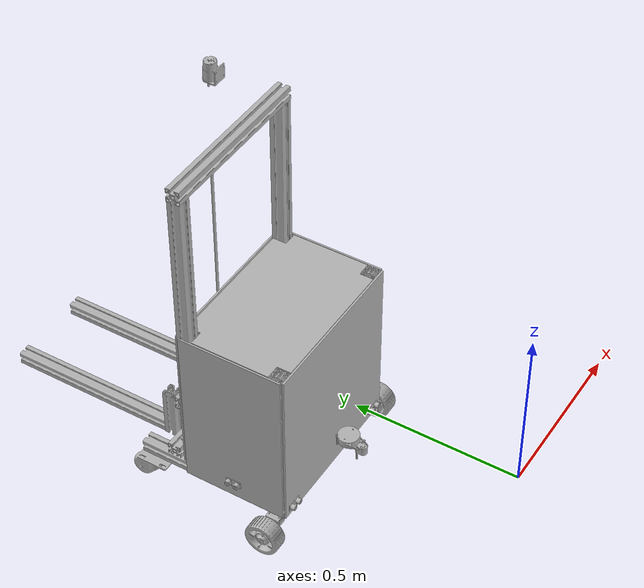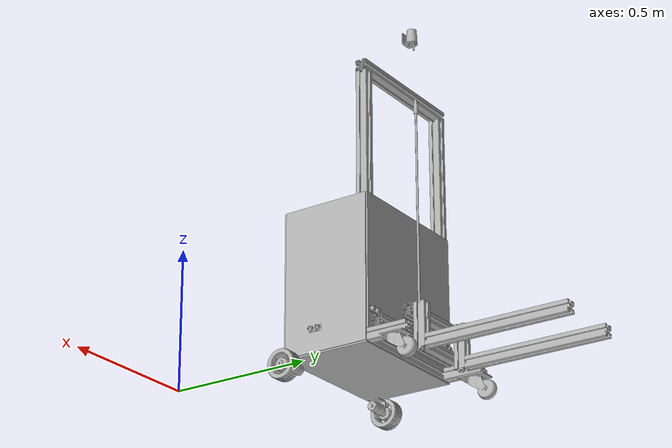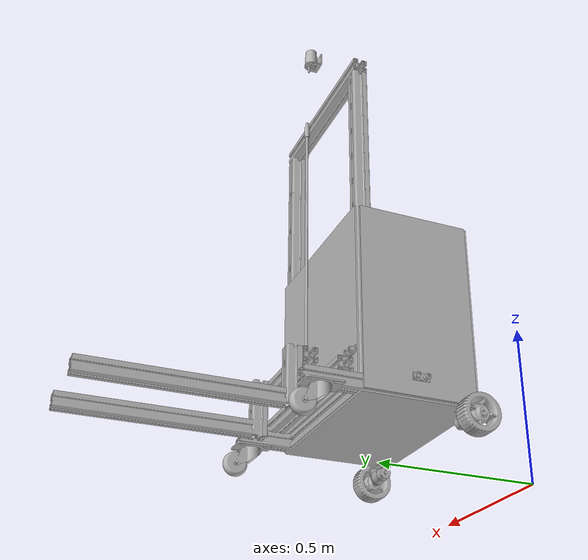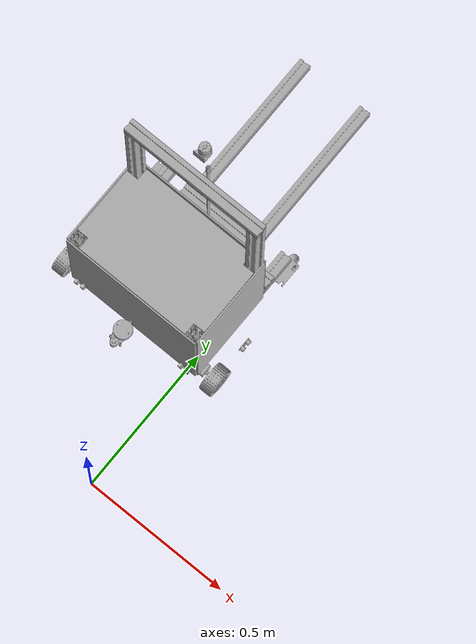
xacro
<?xml version="1.0" ?>
<robot name="fork_redesigned" xmlns:xacro="http://www.ros.org/wiki/xacro">

<material name="silver">
  <color rgba="0.700 0.700 0.700 1.000"/>
</material>

<link name="base_link">
  <inertial>
    <origin xyz="-0.20798536917927715 0.6074770385144476 0.0025" rpy="0 0 0"/>
    <mass value="6.943770210382302"/>
    <inertia ixx="0.053873" iyy="0.194565" izz="0.248409" ixy="-1.9e-05" iyz="0.0" ixz="0.0"/>
  </inertial>
  <visual>
    <origin xyz="0 0 0" rpy="0 0 0"/>
    <geometry>
      <mesh filename="file://$(find mybot_description)/meshes/base_link.stl" scale="0.001 0.001 0.001"/>
    </geometry>
    <material name="silver"/>
  </visual>
  <collision>
    <origin xyz="0 0 0" rpy="0 0 0"/>
    <geometry>
      <mesh filename="file://$(find mybot_description)/meshes/base_link.stl" scale="0.001 0.001 0.001"/>
    </geometry>
  </collision>
</link>

<link name="left_motor_link_1">
  <inertial>
    <origin xyz="-0.025746420161885983 -5.5906449600851005e-06 0.006676741521228598" rpy="0 0 0"/>
    <mass value="0.12785022222079845"/>
    <inertia ixx="2.3e-05" iyy="5.6e-05" izz="5.6e-05" ixy="-0.0" iyz="0.0" ixz="2e-06"/>
  </inertial>
  <visual>
    <origin xyz="-0.097079 -0.484372 0.034" rpy="0 0 0"/>
    <geometry>
      <mesh filename="file://$(find mybot_description)/meshes/left_motor_link_1.stl" scale="0.001 0.001 0.001"/>
    </geometry>
    <material name="silver"/>
  </visual>
  <collision>
    <origin xyz="-0.097079 -0.484372 0.034" rpy="0 0 0"/>
    <geometry>
      <mesh filename="file://$(find mybot_description)/meshes/left_motor_link_1.stl" scale="0.001 0.001 0.001"/>
    </geometry>
  </collision>
</link>

<link name="right_motor_link_1">
  <inertial>
    <origin xyz="0.025746420161885775 3.9798783471045596e-06 0.006673230990990191" rpy="0 0 0"/>
    <mass value="0.12785022222079845"/>
    <inertia ixx="2.3e-05" iyy="5.6e-05" izz="5.6e-05" ixy="-0.0" iyz="-0.0" ixz="-2e-06"/>
  </inertial>
  <visual>
    <origin xyz="0.512989 -0.484372 0.034" rpy="0 0 0"/>
    <geometry>
      <mesh filename="file://$(find mybot_description)/meshes/right_motor_link_1.stl" scale="0.001 0.001 0.001"/>
    </geometry>
    <material name="silver"/>
  </visual>
  <collision>
    <origin xyz="0.512989 -0.484372 0.034" rpy="0 0 0"/>
    <geometry>
      <mesh filename="file://$(find mybot_description)/meshes/right_motor_link_1.stl" scale="0.001 0.001 0.001"/>
    </geometry>
  </collision>
</link>

<link name="left_wheel_link_1">
  <inertial>
    <origin xyz="2.589702400856986e-07 -2.0531276034851942e-07 3.703704010149522e-13" rpy="0 0 0"/>
    <mass value="1.9401899677229664"/>
    <inertia ixx="0.002715" iyy="0.001642" izz="0.001642" ixy="0.0" iyz="-0.0" ixz="0.0"/>
  </inertial>
  <visual>
    <origin xyz="-0.130827 -0.484372 0.034" rpy="0 0 0"/>
    <geometry>
      <mesh filename="file://$(find mybot_description)/meshes/left_wheel_link_1.stl" scale="0.001 0.001 0.001"/>
    </geometry>
    <material name="silver"/>
  </visual>
  <collision>
    <origin xyz="-0.130827 -0.484372 0.034" rpy="0 0 0"/>
    <geometry>
      <mesh filename="file://$(find mybot_description)/meshes/left_wheel_link_1.stl" scale="0.001 0.001 0.001"/>
    </geometry>
  </collision>
</link>

<link name="right_wheel_link_1">
  <inertial>
    <origin xyz="5.004531045127436e-08 -2.0517171461786887e-07 2.9867081030587883e-13" rpy="0 0 0"/>
    <mass value="1.9401899677229664"/>
    <inertia ixx="0.002715" iyy="0.001642" izz="0.001642" ixy="0.0" iyz="-0.0" ixz="0.0"/>
  </inertial>
  <visual>
    <origin xyz="0.54774 -0.484372 0.034" rpy="0 0 0"/>
    <geometry>
      <mesh filename="file://$(find mybot_description)/meshes/right_wheel_link_1.stl" scale="0.001 0.001 0.001"/>
    </geometry>
    <material name="silver"/>
  </visual>
  <collision>
    <origin xyz="0.54774 -0.484372 0.034" rpy="0 0 0"/>
    <geometry>
      <mesh filename="file://$(find mybot_description)/meshes/right_wheel_link_1.stl" scale="0.001 0.001 0.001"/>
    </geometry>
  </collision>
</link>

<link name="fork_rear_slot_right_link_1">
  <inertial>
    <origin xyz="0.020000308159449587 0.016999794757661002 -0.5499999999999772" rpy="0 0 0"/>
    <mass value="1.6079227622387897"/>
    <inertia ixx="0.16237" iyy="0.16237" izz="0.000475" ixy="-0.0" iyz="-0.0" ixz="-0.0"/>
  </inertial>
  <visual>
    <origin xyz="0.497455 -0.725081 -1.145" rpy="0 0 0"/>
    <geometry>
      <mesh filename="file://$(find mybot_description)/meshes/fork_rear_slot_right_link_1.stl" scale="0.001 0.001 0.001"/>
    </geometry>
    <material name="silver"/>
  </visual>
  <collision>
    <origin xyz="0.497455 -0.725081 -1.145" rpy="0 0 0"/>
    <geometry>
      <mesh filename="file://$(find mybot_description)/meshes/fork_rear_slot_right_link_1.stl" scale="0.001 0.001 0.001"/>
    </geometry>
  </collision>
</link>

<link name="lead_motor_link_1">
  <inertial>
    <origin xyz="-5.571494613665351e-06 -0.006675563568607545 0.025746024624354158" rpy="0 0 0"/>
    <mass value="0.12785022222079845"/>
    <inertia ixx="5.6e-05" iyy="5.6e-05" izz="2.3e-05" ixy="-0.0" iyz="2e-06" ixz="-0.0"/>
  </inertial>
  <visual>
    <origin xyz="0.209955 -0.796081 -1.1343" rpy="0 0 0"/>
    <geometry>
      <mesh filename="file://$(find mybot_description)/meshes/lead_motor_link_1.stl" scale="0.001 0.001 0.001"/>
    </geometry>
    <material name="silver"/>
  </visual>
  <collision>
    <origin xyz="0.209955 -0.796081 -1.1343" rpy="0 0 0"/>
    <geometry>
      <mesh filename="file://$(find mybot_description)/meshes/lead_motor_link_1.stl" scale="0.001 0.001 0.001"/>
    </geometry>
  </collision>
</link>

<link name="coupling_link_1">
  <inertial>
    <origin xyz="-0.7798636919107719 0.7960807588890809 1.1183430344970238" rpy="0 0 0"/>
    <mass value="0.03211224123272413"/>
    <inertia ixx="5e-06" iyy="5e-06" izz="1e-06" ixy="-0.0" iyz="-0.0" ixz="-0.0"/>
  </inertial>
  <visual>
    <origin xyz="-0.569909 0.0 0.0215" rpy="0 0 0"/>
    <geometry>
      <mesh filename="file://$(find mybot_description)/meshes/coupling_link_1.stl" scale="0.001 0.001 0.001"/>
    </geometry>
    <material name="silver"/>
  </visual>
  <collision>
    <origin xyz="-0.569909 0.0 0.0215" rpy="0 0 0"/>
    <geometry>
      <mesh filename="file://$(find mybot_description)/meshes/coupling_link_1.stl" scale="0.001 0.001 0.001"/>
    </geometry>
  </collision>
</link>

<link name="lead_screw_link_1">
  <inertial>
    <origin xyz="0.209955 -0.796081 -1.09405" rpy="0 0 0"/>
    <mass value="0.0"/>
    <inertia ixx="0.0" iyy="0.0" izz="0.0" ixy="0.0" iyz="0.0" ixz="0.0"/>
  </inertial>
  <visual>
    <origin xyz="0.209955 -0.796081 -1.09405" rpy="0 0 0"/>
    <geometry>
      <mesh filename="file://$(find mybot_description)/meshes/lead_screw_link_1.stl" scale="0.001 0.001 0.001"/>
    </geometry>
    <material name="silver"/>
  </visual>
  <collision>
    <origin xyz="0.209955 -0.796081 -1.09405" rpy="0 0 0"/>
    <geometry>
      <mesh filename="file://$(find mybot_description)/meshes/lead_screw_link_1.stl" scale="0.001 0.001 0.001"/>
    </geometry>
  </collision>
</link>

<link name="fork_coupling_link_1">
  <inertial>
    <origin xyz="3.704621314715162e-07 -1.82611086141371e-07 -0.003490428234806414" rpy="0 0 0"/>
    <mass value="0.012051917875242903"/>
    <inertia ixx="0.0" iyy="0.0" izz="1e-06" ixy="0.0" iyz="0.0" ixz="0.0"/>
  </inertial>
  <visual>
    <origin xyz="0.209955 -0.796081 -0.17155" rpy="0 0 0"/>
    <geometry>
      <mesh filename="file://$(find mybot_description)/meshes/fork_coupling_link_1.stl" scale="0.001 0.001 0.001"/>
    </geometry>
    <material name="silver"/>
  </visual>
  <collision>
    <origin xyz="0.209955 -0.796081 -0.17155" rpy="0 0 0"/>
    <geometry>
      <mesh filename="file://$(find mybot_description)/meshes/fork_coupling_link_1.stl" scale="0.001 0.001 0.001"/>
    </geometry>
  </collision>
</link>

<link name="fork_holder_link_1">
  <inertial>
    <origin xyz="0.05995430808910074 -0.6339925062179093 -2.015338479526815" rpy="0 0 0"/>
    <mass value="0.06369340089197861"/>
    <inertia ixx="1.3e-05" iyy="1e-05" izz="1.3e-05" ixy="0.0" iyz="4e-06" ixz="-0.0"/>
  </inertial>
  <visual>
    <origin xyz="0.269909 -1.442162 -2.1831" rpy="0 0 0"/>
    <geometry>
      <mesh filename="file://$(find mybot_description)/meshes/fork_holder_link_1.stl" scale="0.001 0.001 0.001"/>
    </geometry>
    <material name="silver"/>
  </visual>
  <collision>
    <origin xyz="0.269909 -1.442162 -2.1831" rpy="0 0 0"/>
    <geometry>
      <mesh filename="file://$(find mybot_description)/meshes/fork_holder_link_1.stl" scale="0.001 0.001 0.001"/>
    </geometry>
  </collision>
</link>

<link name="fork_center_slot_1">
  <inertial>
    <origin xyz="3.080890577378259e-07 0.02000049498194556 -0.01140000000014843" rpy="0 0 0"/>
    <mass value="0.3946719507313423"/>
    <inertia ixx="0.000117" iyy="0.002456" izz="0.002456" ixy="0.0" iyz="-0.0" ixz="0.0"/>
  </inertial>
  <visual>
    <origin xyz="0.209955 -0.819621 -0.16005" rpy="0 0 0"/>
    <geometry>
      <mesh filename="file://$(find mybot_description)/meshes/fork_center_slot_1.stl" scale="0.001 0.001 0.001"/>
    </geometry>
    <material name="silver"/>
  </visual>
  <collision>
    <origin xyz="0.209955 -0.819621 -0.16005" rpy="0 0 0"/>
    <geometry>
      <mesh filename="file://$(find mybot_description)/meshes/fork_center_slot_1.stl" scale="0.001 0.001 0.001"/>
    </geometry>
  </collision>
</link>

<link name="fork_left_link_1">
  <inertial>
    <origin xyz="-0.01699969191092429 0.25000049498193877 0.020000000000006565" rpy="0 0 0"/>
    <mass value="0.7308739828358146"/>
    <inertia ixx="0.015334" iyy="0.000216" izz="0.015334" ixy="-0.0" iyz="0.0" ixz="0.0"/>
  </inertial>
  <visual>
    <origin xyz="0.074955 -0.899621 -0.01565" rpy="0 0 0"/>
    <geometry>
      <mesh filename="file://$(find mybot_description)/meshes/fork_left_link_1.stl" scale="0.001 0.001 0.001"/>
    </geometry>
    <material name="silver"/>
  </visual>
  <collision>
    <origin xyz="0.074955 -0.899621 -0.01565" rpy="0 0 0"/>
    <geometry>
      <mesh filename="file://$(find mybot_description)/meshes/fork_left_link_1.stl" scale="0.001 0.001 0.001"/>
    </geometry>
  </collision>
</link>

<link name="fork_right_link_1">
  <inertial>
    <origin xyz="0.02000030808907538 0.250000494981947 0.017000000000006104" rpy="0 0 0"/>
    <mass value="0.730873982835814"/>
    <inertia ixx="0.015334" iyy="0.000216" izz="0.015334" ixy="-0.0" iyz="-0.0" ixz="0.0"/>
  </inertial>
  <visual>
    <origin xyz="0.344955 -0.899621 -0.01565" rpy="0 0 0"/>
    <geometry>
      <mesh filename="file://$(find mybot_description)/meshes/fork_right_link_1.stl" scale="0.001 0.001 0.001"/>
    </geometry>
    <material name="silver"/>
  </visual>
  <collision>
    <origin xyz="0.344955 -0.899621 -0.01565" rpy="0 0 0"/>
    <geometry>
      <mesh filename="file://$(find mybot_description)/meshes/fork_right_link_1.stl" scale="0.001 0.001 0.001"/>
    </geometry>
  </collision>
</link>

<link name="left_caster_link_1">
  <inertial>
    <origin xyz="0.03250031161157105 -0.01040190184053058 -0.03942068950413622" rpy="0 0 0"/>
    <mass value="0.12271576702932177"/>
    <inertia ixx="0.000159" iyy="9.1e-05" izz="0.000101" ixy="0.0" iyz="4.8e-05" ixz="-0.0"/>
  </inertial>
  <visual>
    <origin xyz="-0.045045 -0.901881 -0.005" rpy="0 0 0"/>
    <geometry>
      <mesh filename="file://$(find mybot_description)/meshes/left_caster_link_1.stl" scale="0.001 0.001 0.001"/>
    </geometry>
    <material name="silver"/>
  </visual>
  <collision>
    <origin xyz="-0.045045 -0.901881 -0.005" rpy="0 0 0"/>
    <geometry>
      <mesh filename="file://$(find mybot_description)/meshes/left_caster_link_1.stl" scale="0.001 0.001 0.001"/>
    </geometry>
  </collision>
</link>

<link name="right_caster_link_1">
  <inertial>
    <origin xyz="-0.032499688388431314 -0.010401901840532024 -0.03942068950412401" rpy="0 0 0"/>
    <mass value="0.12271576702932177"/>
    <inertia ixx="0.000159" iyy="9.1e-05" izz="0.000101" ixy="0.0" iyz="4.8e-05" ixz="-0.0"/>
  </inertial>
  <visual>
    <origin xyz="0.460955 -0.901881 -0.005" rpy="0 0 0"/>
    <geometry>
      <mesh filename="file://$(find mybot_description)/meshes/right_caster_link_1.stl" scale="0.001 0.001 0.001"/>
    </geometry>
    <material name="silver"/>
  </visual>
  <collision>
    <origin xyz="0.460955 -0.901881 -0.005" rpy="0 0 0"/>
    <geometry>
      <mesh filename="file://$(find mybot_description)/meshes/right_caster_link_1.stl" scale="0.001 0.001 0.001"/>
    </geometry>
  </collision>
</link>

<link name="fork_left_h_slot_1">
  <inertial>
    <origin xyz="-0.01699969191109199 0.02000049498194334 -0.07499999999999676" rpy="0 0 0"/>
    <mass value="0.21926219485074544"/>
    <inertia ixx="0.000444" iyy="0.000444" izz="6.5e-05" ixy="0.0" iyz="-0.0" ixz="0.0"/>
  </inertial>
  <visual>
    <origin xyz="0.074955 -0.859621 -0.16565" rpy="0 0 0"/>
    <geometry>
      <mesh filename="file://$(find mybot_description)/meshes/fork_left_h_slot_1.stl" scale="0.001 0.001 0.001"/>
    </geometry>
    <material name="silver"/>
  </visual>
  <collision>
    <origin xyz="0.074955 -0.859621 -0.16565" rpy="0 0 0"/>
    <geometry>
      <mesh filename="file://$(find mybot_description)/meshes/fork_left_h_slot_1.stl" scale="0.001 0.001 0.001"/>
    </geometry>
  </collision>
</link>

<link name="fork_right_h_slot_1">
  <inertial>
    <origin xyz="0.017000308089210492 0.02000049498194878 -0.07499999999999708" rpy="0 0 0"/>
    <mass value="0.21926219485074516"/>
    <inertia ixx="0.000444" iyy="0.000444" izz="6.5e-05" ixy="-0.0" iyz="0.0" ixz="-0.0"/>
  </inertial>
  <visual>
    <origin xyz="0.344955 -0.859621 -0.16565" rpy="0 0 0"/>
    <geometry>
      <mesh filename="file://$(find mybot_description)/meshes/fork_right_h_slot_1.stl" scale="0.001 0.001 0.001"/>
    </geometry>
    <material name="silver"/>
  </visual>
  <collision>
    <origin xyz="0.344955 -0.859621 -0.16565" rpy="0 0 0"/>
    <geometry>
      <mesh filename="file://$(find mybot_description)/meshes/fork_right_h_slot_1.stl" scale="0.001 0.001 0.001"/>
    </geometry>
  </collision>
</link>

<link name="front_bottom_slot_link_1">
  <inertial>
    <origin xyz="3.0815943299900006e-07 0.016999794757658004 0.020000000000000243" rpy="0 0 0"/>
    <mass value="0.7308739828358137"/>
    <inertia ixx="0.000216" iyy="0.015334" izz="0.015334" ixy="-0.0" iyz="0.0" ixz="0.0"/>
  </inertial>
  <visual>
    <origin xyz="0.207955 -0.454881 -0.005" rpy="0 0 0"/>
    <geometry>
      <mesh filename="file://$(find mybot_description)/meshes/front_bottom_slot_link_1.stl" scale="0.001 0.001 0.001"/>
    </geometry>
    <material name="silver"/>
  </visual>
  <collision>
    <origin xyz="0.207955 -0.454881 -0.005" rpy="0 0 0"/>
    <geometry>
      <mesh filename="file://$(find mybot_description)/meshes/front_bottom_slot_link_1.stl" scale="0.001 0.001 0.001"/>
    </geometry>
  </collision>
</link>

<link name="right_bottom_slot_link_1">
  <inertial>
    <origin xyz="-0.01999969184072381 0.22499979475765797 0.005800000000005644" rpy="0 0 0"/>
    <mass value="0.6577865845522363"/>
    <inertia ixx="0.011197" iyy="0.000194" izz="0.011197" ixy="0.0" iyz="0.0" ixz="-0.0"/>
  </inertial>
  <visual>
    <origin xyz="0.457955 -0.451881 -0.0192" rpy="0 0 0"/>
    <geometry>
      <mesh filename="file://$(find mybot_description)/meshes/right_bottom_slot_link_1.stl" scale="0.001 0.001 0.001"/>
    </geometry>
    <material name="silver"/>
  </visual>
  <collision>
    <origin xyz="0.457955 -0.451881 -0.0192" rpy="0 0 0"/>
    <geometry>
      <mesh filename="file://$(find mybot_description)/meshes/right_bottom_slot_link_1.stl" scale="0.001 0.001 0.001"/>
    </geometry>
  </collision>
</link>

<link name="left_bottom_slot_link_1">
  <inertial>
    <origin xyz="0.02000465052056752 0.22493656292787567 0.005791117897822731" rpy="0 0 0"/>
    <mass value="0.6580463549947716"/>
    <inertia ixx="0.011204" iyy="0.000194" izz="0.011204" ixy="0.0" iyz="-1e-06" ixz="0.0"/>
  </inertial>
  <visual>
    <origin xyz="-0.042045 -0.451881 -0.0192" rpy="0 0 0"/>
    <geometry>
      <mesh filename="file://$(find mybot_description)/meshes/left_bottom_slot_link_1.stl" scale="0.001 0.001 0.001"/>
    </geometry>
    <material name="silver"/>
  </visual>
  <collision>
    <origin xyz="-0.042045 -0.451881 -0.0192" rpy="0 0 0"/>
    <geometry>
      <mesh filename="file://$(find mybot_description)/meshes/left_bottom_slot_link_1.stl" scale="0.001 0.001 0.001"/>
    </geometry>
  </collision>
</link>

<link name="fork_front_slot_right_link_1">
  <inertial>
    <origin xyz="0.017000308159435817 0.019999794757659395 0.32500000000000717" rpy="0 0 0"/>
    <mass value="0.9501361776865583"/>
    <inertia ixx="0.033593" iyy="0.033593" izz="0.000281" ixy="-0.0" iyz="-0.0" ixz="-0.0"/>
  </inertial>
  <visual>
    <origin xyz="0.494955 -0.451881 -0.045" rpy="0 0 0"/>
    <geometry>
      <mesh filename="file://$(find mybot_description)/meshes/fork_front_slot_right_link_1.stl" scale="0.001 0.001 0.001"/>
    </geometry>
    <material name="silver"/>
  </visual>
  <collision>
    <origin xyz="0.494955 -0.451881 -0.045" rpy="0 0 0"/>
    <geometry>
      <mesh filename="file://$(find mybot_description)/meshes/fork_front_slot_right_link_1.stl" scale="0.001 0.001 0.001"/>
    </geometry>
  </collision>
</link>

<link name="fork_front_slot_left_link_1">
  <inertial>
    <origin xyz="-0.016999691840561312 0.019999794757660116 0.3249999999999936" rpy="0 0 0"/>
    <mass value="0.9501361776865583"/>
    <inertia ixx="0.033593" iyy="0.033593" izz="0.000281" ixy="0.0" iyz="-0.0" ixz="-0.0"/>
  </inertial>
  <visual>
    <origin xyz="-0.079045 -0.451881 -0.045" rpy="0 0 0"/>
    <geometry>
      <mesh filename="file://$(find mybot_description)/meshes/fork_front_slot_left_link_1.stl" scale="0.001 0.001 0.001"/>
    </geometry>
    <material name="silver"/>
  </visual>
  <collision>
    <origin xyz="-0.079045 -0.451881 -0.045" rpy="0 0 0"/>
    <geometry>
      <mesh filename="file://$(find mybot_description)/meshes/fork_front_slot_left_link_1.stl" scale="0.001 0.001 0.001"/>
    </geometry>
  </collision>
</link>

<link name="rear_bottom_slot_link_1">
  <inertial>
    <origin xyz="-0.0002496918405674453 -0.016999999999999904 0.020000000000000212" rpy="0 0 0"/>
    <mass value="0.7301431088529783"/>
    <inertia ixx="0.000216" iyy="0.015289" izz="0.015289" ixy="-0.0" iyz="0.0" ixz="0.0"/>
  </inertial>
  <visual>
    <origin xyz="0.207955 -0.76 -0.005" rpy="0 0 0"/>
    <geometry>
      <mesh filename="file://$(find mybot_description)/meshes/rear_bottom_slot_link_1.stl" scale="0.001 0.001 0.001"/>
    </geometry>
    <material name="silver"/>
  </visual>
  <collision>
    <origin xyz="0.207955 -0.76 -0.005" rpy="0 0 0"/>
    <geometry>
      <mesh filename="file://$(find mybot_description)/meshes/rear_bottom_slot_link_1.stl" scale="0.001 0.001 0.001"/>
    </geometry>
  </collision>
</link>

<link name="fork_rear_slot_left_link_1">
  <inertial>
    <origin xyz="-0.04404569184055067 0.24599979475766054 1.2468809999999908" rpy="0 0 0"/>
    <mass value="1.6079227622387897"/>
    <inertia ixx="0.16237" iyy="0.16237" izz="0.000475" ixy="-0.0" iyz="-0.0" ixz="-0.0"/>
  </inertial>
  <visual>
    <origin xyz="-0.107091 -0.496881 0.651881" rpy="0 0 0"/>
    <geometry>
      <mesh filename="file://$(find mybot_description)/meshes/fork_rear_slot_left_link_1.stl" scale="0.001 0.001 0.001"/>
    </geometry>
    <material name="silver"/>
  </visual>
  <collision>
    <origin xyz="-0.107091 -0.496881 0.651881" rpy="0 0 0"/>
    <geometry>
      <mesh filename="file://$(find mybot_description)/meshes/fork_rear_slot_left_link_1.stl" scale="0.001 0.001 0.001"/>
    </geometry>
  </collision>
</link>

<link name="fork_top_slot_link_1">
  <inertial>
    <origin xyz="-0.2894996918405325 -0.005800205242335821 0.02000000000000357" rpy="0 0 0"/>
    <mass value="0.8463520721238725"/>
    <inertia ixx="0.00025" iyy="0.023769" izz="0.023769" ixy="-0.0" iyz="0.0" ixz="0.0"/>
  </inertial>
  <visual>
    <origin xyz="-0.081545 -0.747881 -1.145" rpy="0 0 0"/>
    <geometry>
      <mesh filename="file://$(find mybot_description)/meshes/fork_top_slot_link_1.stl" scale="0.001 0.001 0.001"/>
    </geometry>
    <material name="silver"/>
  </visual>
  <collision>
    <origin xyz="-0.081545 -0.747881 -1.145" rpy="0 0 0"/>
    <geometry>
      <mesh filename="file://$(find mybot_description)/meshes/fork_top_slot_link_1.stl" scale="0.001 0.001 0.001"/>
    </geometry>
  </collision>
</link>

<link name="fork_bottom_slot_link_1">
  <inertial>
    <origin xyz="-0.22570469184057362 0.8140807947576636 -0.024999999999987352" rpy="0 0 0"/>
    <mass value="0.8353889623813353"/>
    <inertia ixx="0.000247" iyy="0.022861" izz="0.022861" ixy="-0.0" iyz="0.0" ixz="0.0"/>
  </inertial>
  <visual>
    <origin xyz="-0.017 0.02 -0.09" rpy="0 0 0"/>
    <geometry>
      <mesh filename="file://$(find mybot_description)/meshes/fork_bottom_slot_link_1.stl" scale="0.001 0.001 0.001"/>
    </geometry>
    <material name="silver"/>
  </visual>
  <collision>
    <origin xyz="-0.017 0.02 -0.09" rpy="0 0 0"/>
    <geometry>
      <mesh filename="file://$(find mybot_description)/meshes/fork_bottom_slot_link_1.stl" scale="0.001 0.001 0.001"/>
    </geometry>
  </collision>
</link>

<link name="left_panel_link_1">
  <inertial>
    <origin xyz="0.10554530815944095 0.6238807947576585 0.26149999999999085" rpy="0 0 0"/>
    <mass value="8.2512135"/>
    <inertia ixx="0.388911" iyy="0.324544" izz="0.064401" ixy="0.0" iyz="-0.0" ixz="-0.0"/>
  </inertial>
  <visual>
    <origin xyz="0.02 0.017 -0.09" rpy="0 0 0"/>
    <geometry>
      <mesh filename="file://$(find mybot_description)/meshes/left_panel_link_1.stl" scale="0.001 0.001 0.001"/>
    </geometry>
    <material name="silver"/>
  </visual>
  <collision>
    <origin xyz="0.02 0.017 -0.09" rpy="0 0 0"/>
    <geometry>
      <mesh filename="file://$(find mybot_description)/meshes/left_panel_link_1.stl" scale="0.001 0.001 0.001"/>
    </geometry>
  </collision>
</link>

<link name="right_panel_link_1">
  <inertial>
    <origin xyz="0.47545430815943635 -0.3213812052423414 0.26150000000000606" rpy="0 0 0"/>
    <mass value="8.11638975"/>
    <inertia ixx="0.380503" iyy="0.319241" izz="0.061296" ixy="-0.0" iyz="-0.0" ixz="-0.0"/>
  </inertial>
  <visual>
    <origin xyz="0.975909 -0.926762 -0.09" rpy="0 0 0"/>
    <geometry>
      <mesh filename="file://$(find mybot_description)/meshes/right_panel_link_1.stl" scale="0.001 0.001 0.001"/>
    </geometry>
    <material name="silver"/>
  </visual>
  <collision>
    <origin xyz="0.975909 -0.926762 -0.09" rpy="0 0 0"/>
    <geometry>
      <mesh filename="file://$(find mybot_description)/meshes/right_panel_link_1.stl" scale="0.001 0.001 0.001"/>
    </geometry>
  </collision>
</link>

<link name="top_panel_link_1">
  <inertial>
    <origin xyz="-0.31227225885476906 -0.35763664164238984 -0.047500000000003983" rpy="0 0 0"/>
    <mass value="6.666328787766717"/>
    <inertia ixx="0.048948" iyy="0.174878" izz="0.223798" ixy="0.000206" iyz="0.0" ixz="-0.0"/>
  </inertial>
  <visual>
    <origin xyz="-0.104969 -0.962883 -0.74" rpy="0 0 0"/>
    <geometry>
      <mesh filename="file://$(find mybot_description)/meshes/top_panel_link_1.stl" scale="0.001 0.001 0.001"/>
    </geometry>
    <material name="silver"/>
  </visual>
  <collision>
    <origin xyz="-0.104969 -0.962883 -0.74" rpy="0 0 0"/>
    <geometry>
      <mesh filename="file://$(find mybot_description)/meshes/top_panel_link_1.stl" scale="0.001 0.001 0.001"/>
    </geometry>
  </collision>
</link>

<link name="front_panel_link_1">
  <inertial>
    <origin xyz="3.0815943993789396e-07 -0.002500205242342235 0.34349999999999886" rpy="0 0 0"/>
    <mass value="15.585625499999999"/>
    <inertia ixx="0.613027" iyy="1.046903" izz="0.433941" ixy="0.0" iyz="0.0" ixz="-0.0"/>
  </inertial>
  <visual>
    <origin xyz="0.207955 -0.451881 -0.008" rpy="0 0 0"/>
    <geometry>
      <mesh filename="file://$(find mybot_description)/meshes/front_panel_link_1.stl" scale="0.001 0.001 0.001"/>
    </geometry>
    <material name="silver"/>
  </visual>
  <collision>
    <origin xyz="0.207955 -0.451881 -0.008" rpy="0 0 0"/>
    <geometry>
      <mesh filename="file://$(find mybot_description)/meshes/front_panel_link_1.stl" scale="0.001 0.001 0.001"/>
    </geometry>
  </collision>
</link>

<link name="rear_panel_link_1">
  <inertial>
    <origin xyz="3.0815943860562633e-07 0.0025000000000000577 0.3249999999999997" rpy="0 0 0"/>
    <mass value="14.746224999999999"/>
    <inertia ixx="0.519221" iyy="0.92973" izz="0.410571" ixy="0.0" iyz="-0.0" ixz="-0.0"/>
  </inertial>
  <visual>
    <origin xyz="0.208205 -0.763 -0.042" rpy="0 0 0"/>
    <geometry>
      <mesh filename="file://$(find mybot_description)/meshes/rear_panel_link_1.stl" scale="0.001 0.001 0.001"/>
    </geometry>
    <material name="silver"/>
  </visual>
  <collision>
    <origin xyz="0.208205 -0.763 -0.042" rpy="0 0 0"/>
    <geometry>
      <mesh filename="file://$(find mybot_description)/meshes/rear_panel_link_1.stl" scale="0.001 0.001 0.001"/>
    </geometry>
  </collision>
</link>

<link name="left_motor_holder_link_1">
  <inertial>
    <origin xyz="0.021620303567720253 0.014999794759322893 -0.010151847427416521" rpy="0 0 0"/>
    <mass value="0.061662152889289286"/>
    <inertia ixx="1.9e-05" iyy="2.2e-05" izz="2e-05" ixy="-0.0" iyz="0.0" ixz="6e-06"/>
  </inertial>
  <visual>
    <origin xyz="-0.062579 -0.469372 -0.0" rpy="0 0 0"/>
    <geometry>
      <mesh filename="file://$(find mybot_description)/meshes/left_motor_holder_link_1.stl" scale="0.001 0.001 0.001"/>
    </geometry>
    <material name="silver"/>
  </visual>
  <collision>
    <origin xyz="-0.062579 -0.469372 -0.0" rpy="0 0 0"/>
    <geometry>
      <mesh filename="file://$(find mybot_description)/meshes/left_motor_holder_link_1.stl" scale="0.001 0.001 0.001"/>
    </geometry>
  </collision>
</link>

<link name="lead_motor_holder_link_1">
  <inertial>
    <origin xyz="0.8313003081611321 -0.7319293578149195 0.19013430089474792" rpy="0 0 0"/>
    <mass value="0.061662152889289286"/>
    <inertia ixx="2.2e-05" iyy="2e-05" izz="1.9e-05" ixy="-0.0" iyz="6e-06" ixz="0.0"/>
  </inertial>
  <visual>
    <origin xyz="1.041255 -1.504162 -0.957045" rpy="0 0 0"/>
    <geometry>
      <mesh filename="file://$(find mybot_description)/meshes/lead_motor_holder_link_1.stl" scale="0.001 0.001 0.001"/>
    </geometry>
    <material name="silver"/>
  </visual>
  <collision>
    <origin xyz="1.041255 -1.504162 -0.957045" rpy="0 0 0"/>
    <geometry>
      <mesh filename="file://$(find mybot_description)/meshes/lead_motor_holder_link_1.stl" scale="0.001 0.001 0.001"/>
    </geometry>
  </collision>
</link>

<link name="bottom_screw_holder_link_1">
  <inertial>
    <origin xyz="-0.23224969183969912 -0.7860812052423365 0.23963661026358374" rpy="0 0 0"/>
    <mass value="0.014958632790476097"/>
    <inertia ixx="2e-06" iyy="2e-06" izz="1e-06" ixy="-0.0" iyz="0.0" ixz="0.0"/>
  </inertial>
  <visual>
    <origin xyz="-0.022545 -1.582362 0.143705" rpy="0 0 0"/>
    <geometry>
      <mesh filename="file://$(find mybot_description)/meshes/bottom_screw_holder_link_1.stl" scale="0.001 0.001 0.001"/>
    </geometry>
    <material name="silver"/>
  </visual>
  <collision>
    <origin xyz="-0.022545 -1.582362 0.143705" rpy="0 0 0"/>
    <geometry>
      <mesh filename="file://$(find mybot_description)/meshes/bottom_screw_holder_link_1.stl" scale="0.001 0.001 0.001"/>
    </geometry>
  </collision>
</link>

<link name="right_motor_holder_link_1">
  <inertial>
    <origin xyz="-0.021620303567720323 0.014999794755993279 -0.010151847427416491" rpy="0 0 0"/>
    <mass value="0.061662152889289286"/>
    <inertia ixx="1.9e-05" iyy="2.2e-05" izz="2e-05" ixy="-0.0" iyz="-0.0" ixz="-6e-06"/>
  </inertial>
  <visual>
    <origin xyz="0.478489 -0.469372 -0.0" rpy="0 0 0"/>
    <geometry>
      <mesh filename="file://$(find mybot_description)/meshes/right_motor_holder_link_1.stl" scale="0.001 0.001 0.001"/>
    </geometry>
    <material name="silver"/>
  </visual>
  <collision>
    <origin xyz="0.478489 -0.469372 -0.0" rpy="0 0 0"/>
    <geometry>
      <mesh filename="file://$(find mybot_description)/meshes/right_motor_holder_link_1.stl" scale="0.001 0.001 0.001"/>
    </geometry>
  </collision>
</link>

<link name="lidar_link_1">
  <inertial>
    <origin xyz="0.08646004253621625 -0.16362834140596594 0.13596700000012296" rpy="0 0 0"/>
    <mass value="0.013064691419369279"/>
    <inertia ixx="1.6e-05" iyy="4e-06" izz="1.8e-05" ixy="0.0" iyz="0.0" ixz="0.0"/>
  </inertial>
  <visual>
    <origin xyz="0.293536 -0.751744 -0.574033" rpy="0 0 0"/>
    <geometry>
      <mesh filename="file://$(find mybot_description)/meshes/lidar_link_1.stl" scale="0.001 0.001 0.001"/>
    </geometry>
    <material name="silver"/>
  </visual>
  <collision>
    <origin xyz="0.293536 -0.751744 -0.574033" rpy="0 0 0"/>
    <geometry>
      <mesh filename="file://$(find mybot_description)/meshes/lidar_link_1.stl" scale="0.001 0.001 0.001"/>
    </geometry>
  </collision>
</link>

<link name="imu_link_1">
  <inertial>
    <origin xyz="0.0004657579007719126 -7.4719617430552e-05 0.0011352557386969941" rpy="0 0 0"/>
    <mass value="0.0006377115631169521"/>
    <inertia ixx="0.0" iyy="0.0" izz="0.0" ixy="0.0" iyz="0.0" ixz="-0.0"/>
  </inertial>
  <visual>
    <origin xyz="0.207076 -0.605649 -0.695" rpy="0 0 0"/>
    <geometry>
      <mesh filename="file://$(find mybot_description)/meshes/imu_link_1.stl" scale="0.001 0.001 0.001"/>
    </geometry>
    <material name="silver"/>
  </visual>
  <collision>
    <origin xyz="0.207076 -0.605649 -0.695" rpy="0 0 0"/>
    <geometry>
      <mesh filename="file://$(find mybot_description)/meshes/imu_link_1.stl" scale="0.001 0.001 0.001"/>
    </geometry>
  </collision>
</link>

<link name="ultrasonic_front_left_1">
  <inertial>
    <origin xyz="0.4369542234814906 -0.450874632737084 -0.8037789689737815" rpy="0 0 0"/>
    <mass value="0.0294413230658598"/>
    <inertia ixx="1e-06" iyy="6e-06" izz="5e-06" ixy="0.0" iyz="0.0" ixz="0.0"/>
  </inertial>
  <visual>
    <origin xyz="0.415909 -0.893762 -0.8615" rpy="0 0 0"/>
    <geometry>
      <mesh filename="file://$(find mybot_description)/meshes/ultrasonic_front_left_1.stl" scale="0.001 0.001 0.001"/>
    </geometry>
    <material name="silver"/>
  </visual>
  <collision>
    <origin xyz="0.415909 -0.893762 -0.8615" rpy="0 0 0"/>
    <geometry>
      <mesh filename="file://$(find mybot_description)/meshes/ultrasonic_front_left_1.stl" scale="0.001 0.001 0.001"/>
    </geometry>
  </collision>
</link>

<link name="ultrasonic_front_right_1">
  <inertial>
    <origin xyz="0.5469542234814928 -0.450874632737084 -0.8037789689737698" rpy="0 0 0"/>
    <mass value="0.0294413230658598"/>
    <inertia ixx="1e-06" iyy="6e-06" izz="5e-06" ixy="0.0" iyz="0.0" ixz="0.0"/>
  </inertial>
  <visual>
    <origin xyz="0.993909 -0.893762 -0.8615" rpy="0 0 0"/>
    <geometry>
      <mesh filename="file://$(find mybot_description)/meshes/ultrasonic_front_right_1.stl" scale="0.001 0.001 0.001"/>
    </geometry>
    <material name="silver"/>
  </visual>
  <collision>
    <origin xyz="0.993909 -0.893762 -0.8615" rpy="0 0 0"/>
    <geometry>
      <mesh filename="file://$(find mybot_description)/meshes/ultrasonic_front_right_1.stl" scale="0.001 0.001 0.001"/>
    </geometry>
  </collision>
</link>

<link name="ultrasonic_side_right_1">
  <inertial>
    <origin xyz="-0.5119481193353107 -0.4548811205644019 -0.4697789689737702" rpy="0 0 0"/>
    <mass value="0.0294413230658598"/>
    <inertia ixx="6e-06" iyy="1e-06" izz="5e-06" ixy="-0.0" iyz="-0.0" ixz="0.0"/>
  </inertial>
  <visual>
    <origin xyz="-0.005 -1.060262 -0.5275" rpy="0 0 0"/>
    <geometry>
      <mesh filename="file://$(find mybot_description)/meshes/ultrasonic_side_right_1.stl" scale="0.001 0.001 0.001"/>
    </geometry>
    <material name="silver"/>
  </visual>
  <collision>
    <origin xyz="-0.005 -1.060262 -0.5275" rpy="0 0 0"/>
    <geometry>
      <mesh filename="file://$(find mybot_description)/meshes/ultrasonic_side_right_1.stl" scale="0.001 0.001 0.001"/>
    </geometry>
  </collision>
</link>

<link name="ultrasonic_side_left_1">
  <inertial>
    <origin xyz="-0.07905226434582698 -0.458881289920285 -0.4857789689737842" rpy="0 0 0"/>
    <mass value="0.0294413230658598"/>
    <inertia ixx="6e-06" iyy="1e-06" izz="5e-06" ixy="-0.0" iyz="0.0" ixz="-0.0"/>
  </inertial>
  <visual>
    <origin xyz="-0.171091 -1.065762 -0.5435" rpy="0 0 0"/>
    <geometry>
      <mesh filename="file://$(find mybot_description)/meshes/ultrasonic_side_left_1.stl" scale="0.001 0.001 0.001"/>
    </geometry>
    <material name="silver"/>
  </visual>
  <collision>
    <origin xyz="-0.171091 -1.065762 -0.5435" rpy="0 0 0"/>
    <geometry>
      <mesh filename="file://$(find mybot_description)/meshes/ultrasonic_side_left_1.stl" scale="0.001 0.001 0.001"/>
    </geometry>
  </collision>
</link>

<link name="ultrasonic_rear_right_1">
  <inertial>
    <origin xyz="0.5272043928373756 0.7719934274947409 -0.7387789689737696" rpy="0 0 0"/>
    <mass value="0.0294413230658598"/>
    <inertia ixx="1e-06" iyy="6e-06" izz="5e-06" ixy="0.0" iyz="-0.0" ixz="-0.0"/>
  </inertial>
  <visual>
    <origin xyz="0.994409 -0.0 -0.8455" rpy="0 0 0"/>
    <geometry>
      <mesh filename="file://$(find mybot_description)/meshes/ultrasonic_rear_right_1.stl" scale="0.001 0.001 0.001"/>
    </geometry>
    <material name="silver"/>
  </visual>
  <collision>
    <origin xyz="0.994409 -0.0 -0.8455" rpy="0 0 0"/>
    <geometry>
      <mesh filename="file://$(find mybot_description)/meshes/ultrasonic_rear_right_1.stl" scale="0.001 0.001 0.001"/>
    </geometry>
  </collision>
</link>

<link name="ultrasonic_rear_left_1">
  <inertial>
    <origin xyz="0.46720439283737447 0.7719934274947414 -0.7387789689737826" rpy="0 0 0"/>
    <mass value="0.0294413230658598"/>
    <inertia ixx="1e-06" iyy="6e-06" izz="5e-06" ixy="0.0" iyz="-0.0" ixz="-0.0"/>
  </inertial>
  <visual>
    <origin xyz="0.416409 -0.0 -0.8455" rpy="0 0 0"/>
    <geometry>
      <mesh filename="file://$(find mybot_description)/meshes/ultrasonic_rear_left_1.stl" scale="0.001 0.001 0.001"/>
    </geometry>
    <material name="silver"/>
  </visual>
  <collision>
    <origin xyz="0.416409 -0.0 -0.8455" rpy="0 0 0"/>
    <geometry>
      <mesh filename="file://$(find mybot_description)/meshes/ultrasonic_rear_left_1.stl" scale="0.001 0.001 0.001"/>
    </geometry>
  </collision>
</link>

<joint name="Rigid_15" type="fixed">
  <origin xyz="0.0345 0.015 -0.034" rpy="0 0 0"/>
  <parent link="left_motor_holder_link_1"/>
  <child link="left_motor_link_1"/>
</joint>

<joint name="Rigid_16" type="fixed">
  <origin xyz="-0.0345 0.015 -0.034" rpy="0 0 0"/>
  <parent link="right_motor_holder_link_1"/>
  <child link="right_motor_link_1"/>
</joint>

<joint name="Rigid_17" type="continuous">
  <origin xyz="0.033748 0.0 0.0" rpy="0 0 0"/>
  <parent link="left_motor_link_1"/>
  <child link="left_wheel_link_1"/>
  <axis xyz="1 0 0"/>
</joint>

<joint name="Rigid_18" type="continuous">
  <origin xyz="-0.034751 0.0 0.0" rpy="0 0 0"/>
  <parent link="right_motor_link_1"/>
  <child link="right_wheel_link_1"/>
  <axis xyz="1 0 0"/>
</joint>

<joint name="Rigid_26" type="fixed">
  <origin xyz="-0.579 -0.0228 0.0" rpy="0 0 0"/>
  <parent link="fork_top_slot_link_1"/>
  <child link="fork_rear_slot_right_link_1"/>
</joint>

<joint name="Rigid_35" type="fixed">
  <origin xyz="0.8313 -0.708081 0.177255" rpy="0 0 0"/>
  <parent link="lead_motor_holder_link_1"/>
  <child link="lead_motor_link_1"/>
</joint>

<joint name="Rigid_36" type="fixed">
  <origin xyz="0.779864 -0.796081 -1.1558" rpy="0 0 0"/>
  <parent link="lead_motor_link_1"/>
  <child link="coupling_link_1"/>
</joint>

<joint name="Rigid_38" type="fixed">
  <origin xyz="-0.779864 0.796081 1.11555" rpy="0 0 0"/>
  <parent link="coupling_link_1"/>
  <child link="lead_screw_link_1"/>
</joint>

<joint name="Rigid_42" type="fixed">
  <origin xyz="0.059954 -0.646081 -2.01155" rpy="0 0 0"/>
  <parent link="fork_holder_link_1"/>
  <child link="fork_coupling_link_1"/>
</joint>

<joint name="Slider_43" type="prismatic">
  <origin xyz="-0.839818 1.442162 2.2046" rpy="0 0 0"/>
  <parent link="coupling_link_1"/>
  <child link="fork_holder_link_1"/>
  <axis xyz="0.0 -0.0 -1.0"/>
  <limit upper="0.9" lower="0.0" effort="100" velocity="100"/>
</joint>

<joint name="Rigid_44" type="fixed">
  <origin xyz="0.059954 -0.622541 -2.02305" rpy="0 0 0"/>
  <parent link="fork_holder_link_1"/>
  <child link="fork_center_slot_1"/>
</joint>

<joint name="Rigid_47" type="fixed">
  <origin xyz="0.0 0.04 -0.15" rpy="0 0 0"/>
  <parent link="fork_left_h_slot_1"/>
  <child link="fork_left_link_1"/>
</joint>

<joint name="Rigid_48" type="fixed">
  <origin xyz="0.0 0.04 -0.15" rpy="0 0 0"/>
  <parent link="fork_right_h_slot_1"/>
  <child link="fork_right_link_1"/>
</joint>

<joint name="Rigid_58" type="fixed">
  <origin xyz="0.003 0.45 -0.0142" rpy="0 0 0"/>
  <parent link="left_bottom_slot_link_1"/>
  <child link="left_caster_link_1"/>
</joint>

<joint name="Rigid_59" type="fixed">
  <origin xyz="-0.003 0.45 -0.0142" rpy="0 0 0"/>
  <parent link="right_bottom_slot_link_1"/>
  <child link="right_caster_link_1"/>
</joint>

<joint name="Rigid_60" type="fixed">
  <origin xyz="0.135 0.04 0.0056" rpy="0 0 0"/>
  <parent link="fork_center_slot_1"/>
  <child link="fork_left_h_slot_1"/>
</joint>

<joint name="Rigid_61" type="fixed">
  <origin xyz="-0.135 0.04 0.0056" rpy="0 0 0"/>
  <parent link="fork_center_slot_1"/>
  <child link="fork_right_h_slot_1"/>
</joint>

<joint name="Rigid_62" type="fixed">
  <origin xyz="-0.207955 0.454881 0.005" rpy="0 0 0"/>
  <parent link="base_link"/>
  <child link="front_bottom_slot_link_1"/>
</joint>

<joint name="Rigid_63" type="fixed">
  <origin xyz="-0.25 -0.003 0.0142" rpy="0 0 0"/>
  <parent link="front_bottom_slot_link_1"/>
  <child link="right_bottom_slot_link_1"/>
</joint>

<joint name="Rigid_64" type="fixed">
  <origin xyz="0.25 -0.003 0.0142" rpy="0 0 0"/>
  <parent link="front_bottom_slot_link_1"/>
  <child link="left_bottom_slot_link_1"/>
</joint>

<joint name="Rigid_65" type="fixed">
  <origin xyz="-0.037 0.0 0.0258" rpy="0 0 0"/>
  <parent link="right_bottom_slot_link_1"/>
  <child link="fork_front_slot_right_link_1"/>
</joint>

<joint name="Rigid_66" type="fixed">
  <origin xyz="0.037 0.0 0.0258" rpy="0 0 0"/>
  <parent link="left_bottom_slot_link_1"/>
  <child link="fork_front_slot_left_link_1"/>
</joint>

<joint name="Rigid_67" type="fixed">
  <origin xyz="-0.207955 0.76 0.005" rpy="0 0 0"/>
  <parent link="base_link"/>
  <child link="rear_bottom_slot_link_1"/>
</joint>

<joint name="Rigid_68" type="fixed">
  <origin xyz="0.065046 0.045 -0.671081" rpy="0 0 0"/>
  <parent link="left_bottom_slot_link_1"/>
  <child link="fork_rear_slot_left_link_1"/>
</joint>

<joint name="Rigid_70" type="fixed">
  <origin xyz="-0.025546 0.251 1.796881" rpy="0 0 0"/>
  <parent link="fork_rear_slot_left_link_1"/>
  <child link="fork_top_slot_link_1"/>
</joint>

<joint name="Rigid_71" type="fixed">
  <origin xyz="0.514455 -0.745081 -1.055" rpy="0 0 0"/>
  <parent link="fork_rear_slot_right_link_1"/>
  <child link="fork_bottom_slot_link_1"/>
</joint>

<joint name="Rigid_73" type="fixed">
  <origin xyz="-0.127091 -0.513881 0.741881" rpy="0 0 0"/>
  <parent link="fork_rear_slot_left_link_1"/>
  <child link="left_panel_link_1"/>
</joint>

<joint name="Rigid_74" type="fixed">
  <origin xyz="-0.480954 0.474881 0.045" rpy="0 0 0"/>
  <parent link="fork_front_slot_right_link_1"/>
  <child link="right_panel_link_1"/>
</joint>

<joint name="Rigid_75" type="fixed">
  <origin xyz="0.025924 0.511002 0.695" rpy="0 0 0"/>
  <parent link="fork_front_slot_left_link_1"/>
  <child link="top_panel_link_1"/>
</joint>

<joint name="Rigid_76" type="fixed">
  <origin xyz="0.0 -0.003 0.003" rpy="0 0 0"/>
  <parent link="front_bottom_slot_link_1"/>
  <child link="front_panel_link_1"/>
</joint>

<joint name="Rigid_77" type="fixed">
  <origin xyz="-0.00025 0.003 0.037" rpy="0 0 0"/>
  <parent link="rear_bottom_slot_link_1"/>
  <child link="rear_panel_link_1"/>
</joint>

<joint name="Rigid_78" type="fixed">
  <origin xyz="0.062579 0.469372 0.0" rpy="0 0 0"/>
  <parent link="base_link"/>
  <child link="left_motor_holder_link_1"/>
</joint>

<joint name="Rigid_80" type="fixed">
  <origin xyz="-1.1228 0.756281 -0.187955" rpy="0 0 0"/>
  <parent link="fork_top_slot_link_1"/>
  <child link="lead_motor_holder_link_1"/>
</joint>

<joint name="Rigid_81" type="fixed">
  <origin xyz="0.005545 1.602362 -0.233705" rpy="0 0 0"/>
  <parent link="fork_bottom_slot_link_1"/>
  <child link="bottom_screw_holder_link_1"/>
</joint>

<joint name="Rigid_82" type="fixed">
  <origin xyz="-0.478489 0.469372 0.0" rpy="0 0 0"/>
  <parent link="base_link"/>
  <child link="right_motor_holder_link_1"/>
</joint>

<joint name="Rigid_83" type="fixed">
  <origin xyz="-0.398505 -0.211139 -0.165967" rpy="0 0 0"/>
  <parent link="top_panel_link_1"/>
  <child link="lidar_link_1"/>
</joint>

<joint name="Rigid_84" type="fixed">
  <origin xyz="-0.312045 -0.357234 -0.045" rpy="0 0 0"/>
  <parent link="top_panel_link_1"/>
  <child link="imu_link_1"/>
</joint>

<joint name="Rigid_85" type="fixed">
  <origin xyz="-0.207954 0.441881 0.8535" rpy="0 0 0"/>
  <parent link="front_panel_link_1"/>
  <child link="ultrasonic_front_left_1"/>
</joint>

<joint name="Rigid_86" type="fixed">
  <origin xyz="-0.785954 0.441881 0.8535" rpy="0 0 0"/>
  <parent link="front_panel_link_1"/>
  <child link="ultrasonic_front_right_1"/>
</joint>

<joint name="Rigid_87" type="fixed">
  <origin xyz="0.980909 0.1335 0.4375" rpy="0 0 0"/>
  <parent link="right_panel_link_1"/>
  <child link="ultrasonic_side_right_1"/>
</joint>

<joint name="Rigid_88" type="fixed">
  <origin xyz="0.191091 1.082762 0.4535" rpy="0 0 0"/>
  <parent link="left_panel_link_1"/>
  <child link="ultrasonic_side_left_1"/>
</joint>

<joint name="Rigid_89" type="fixed">
  <origin xyz="-0.786204 -0.763 0.8035" rpy="0 0 0"/>
  <parent link="rear_panel_link_1"/>
  <child link="ultrasonic_rear_right_1"/>
</joint>

<joint name="Rigid_90" type="fixed">
  <origin xyz="-0.208204 -0.763 0.8035" rpy="0 0 0"/>
  <parent link="rear_panel_link_1"/>
  <child link="ultrasonic_rear_left_1"/>
</joint>

</robot>
